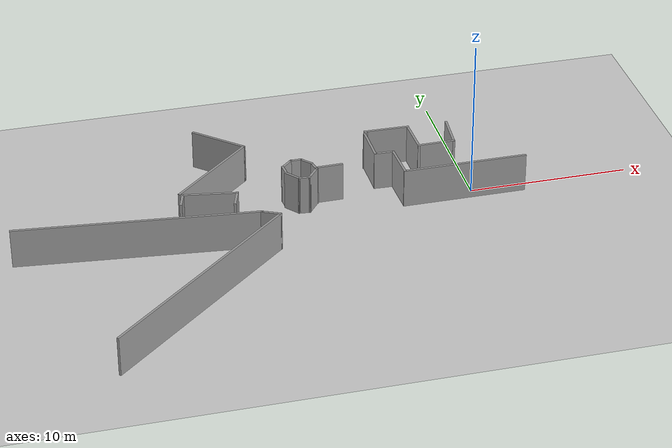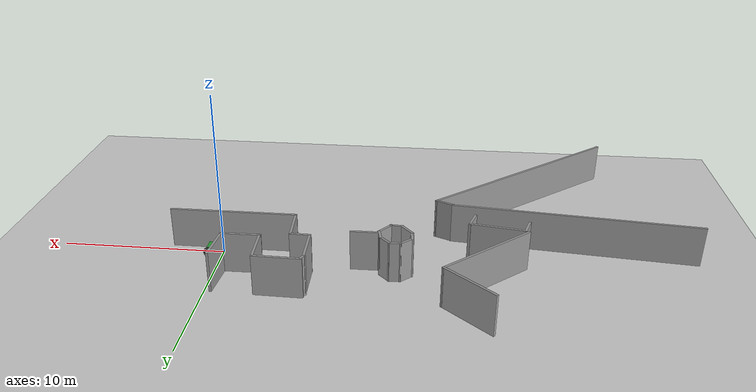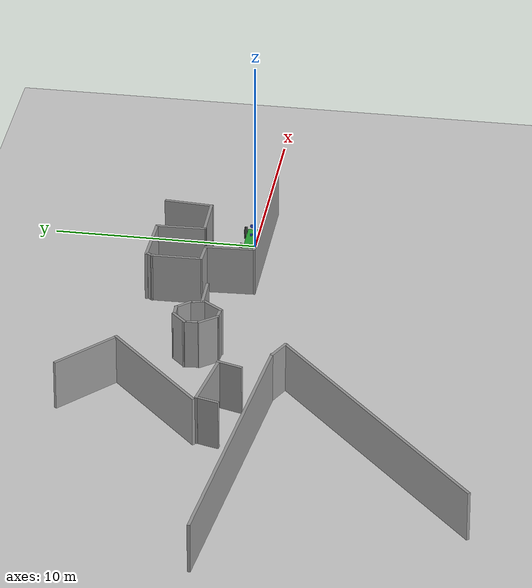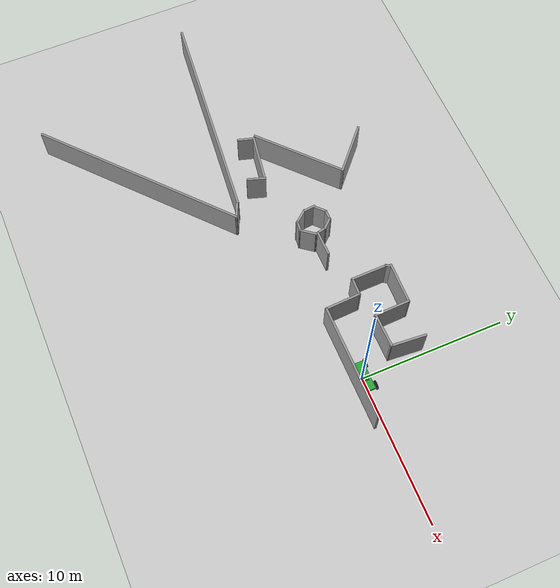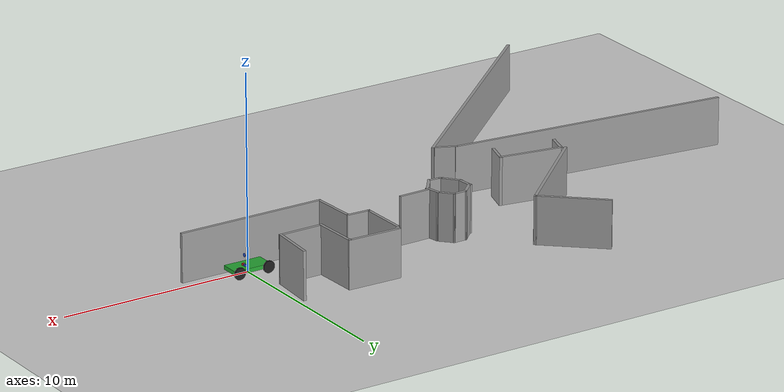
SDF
<sdf version="1.6">
 <world name="default">
  <model name="ground_plane">
   <static>1</static>
   <link name="link">
    <collision name="collision">
     <geometry><plane><normal>0 0 1</normal><size>100 100</size></plane></geometry>
     <surface><friction><ode><mu>100</mu><mu2>50</mu2></ode></friction></surface>
    </collision>
    <visual name="visual">
     <cast_shadows>0</cast_shadows>
     <geometry><plane><normal>0 0 1</normal><size>100 100</size></plane></geometry>
     <material>
      <script><uri>file://media/materials/scripts/gazebo.material</uri><name>Gazebo/Grey</name></script>
     </material>
    </visual>
   </link>
  </model>
  <model name="mall_new_reduce_size">
   <pose>-6.8092 7.5529 0 0 -0 0</pose>
   <link name="Wall_246">
    <collision name="Wall_246_Collision">
     <geometry><box><size>0.40844 0.15 2.5</size></box></geometry>
     <pose>0 0 1.25 0 -0 0</pose>
    </collision>
    <visual name="Wall_246_Visual">
     <pose>0 0 1.25 0 -0 0</pose>
     <geometry><box><size>0.40844 0.15 2.5</size></box></geometry>
     <material>
      <script><uri>file://media/materials/scripts/gazebo.material</uri><name>Gazebo/Grey</name></script>
      <ambient>1 1 1 1</ambient>
     </material>
     <meta><layer>0</layer></meta>
    </visual>
    <pose>1.19003 -3.26525 0 0 -0 -2.19847</pose>
   </link>
   <link name="Wall_247">
    <collision name="Wall_247_Collision">
     <geometry><box><size>2.53 0.15 2.5</size></box></geometry>
     <pose>0 0 1.25 0 -0 0</pose>
    </collision>
    <visual name="Wall_247_Visual">
     <pose>0 0 1.25 0 -0 0</pose>
     <geometry><box><size>2.53 0.15 2.5</size></box></geometry>
     <material>
      <script><uri>file://media/materials/scripts/gazebo.material</uri><name>Gazebo/Grey</name></script>
      <ambient>1 1 1 1</ambient>
     </material>
     <meta><layer>0</layer></meta>
    </visual>
    <pose>1.14793 -4.55973 0 0 -0 -1.55658</pose>
   </link>
   <link name="Wall_248">
    <collision name="Wall_248_Collision">
     <geometry><box><size>1.286 0.15 2.5</size></box></geometry>
     <pose>0 0 1.25 0 -0 0</pose>
    </collision>
    <visual name="Wall_248_Visual">
     <pose>0 0 1.25 0 -0 0</pose>
     <geometry><box><size>1.286 0.15 2.5</size></box></geometry>
     <material>
      <script><uri>file://media/materials/scripts/gazebo.material</uri><name>Gazebo/Grey</name></script>
      <ambient>1 1 1 1</ambient>
     </material>
     <meta><layer>0</layer></meta>
    </visual>
    <pose>1.73245 -5.78757 0 0 -0 -0.037153</pose>
   </link>
   <link name="Wall_249">
    <collision name="Wall_249_Collision">
     <geometry><box><size>2.45157 0.15 2.5</size></box></geometry>
     <pose>0 0 1.25 0 -0 0</pose>
    </collision>
    <visual name="Wall_249_Visual">
     <pose>0 0 1.25 0 -0 0</pose>
     <geometry><box><size>2.45157 0.15 2.5</size></box></geometry>
     <material>
      <script><uri>file://media/materials/scripts/gazebo.material</uri><name>Gazebo/Grey</name></script>
      <ambient>1 1 1 1</ambient>
     </material>
     <meta><layer>0</layer></meta>
    </visual>
    <pose>2.35085 -6.98766 0 0 -0 -1.52665</pose>
   </link>
   <link name="Wall_250">
    <collision name="Wall_250_Collision">
     <geometry><box><size>7.76065 0.15 2.5</size></box></geometry>
     <pose>0 0 1.25 0 -0 0</pose>
    </collision>
    <visual name="Wall_250_Visual">
     <pose>0 0 1.25 0 -0 0</pose>
     <geometry><box><size>7.76065 0.15 2.5</size></box></geometry>
     <material>
      <script><uri>file://media/materials/scripts/gazebo.material</uri><name>Gazebo/Grey</name></script>
      <ambient>1 1 1 1</ambient>
     </material>
     <meta><layer>0</layer></meta>
    </visual>
    <pose>6.20696 -8.14975 0 0 -0 0.000586</pose>
   </link>
   <link name="Wall_255">
    <collision name="Wall_255_Collision">
     <geometry><box><size>2.43165 0.15 2.5</size></box></geometry>
     <pose>0 0 1.25 0 -0 0</pose>
    </collision>
    <visual name="Wall_255_Visual">
     <pose>0 0 1.25 0 -0 0</pose>
     <geometry><box><size>2.43165 0.15 2.5</size></box></geometry>
     <material>
      <script><uri>file://media/materials/scripts/gazebo.material</uri><name>Gazebo/Grey</name></script>
      <ambient>1 1 1 1</ambient>
     </material>
     <meta><layer>0</layer></meta>
    </visual>
    <pose>6.35442 -4.32233 0 0 -0 -1.64969</pose>
   </link>
   <link name="Wall_256">
    <collision name="Wall_256_Collision">
     <geometry><box><size>2.39373 0.15 2.5</size></box></geometry>
     <pose>0 0 1.25 0 -0 0</pose>
    </collision>
    <visual name="Wall_256_Visual">
     <pose>0 0 1.25 0 -0 0</pose>
     <geometry><box><size>2.39373 0.15 2.5</size></box></geometry>
     <material>
      <script><uri>file://media/materials/scripts/gazebo.material</uri><name>Gazebo/Grey</name></script>
      <ambient>1 1 1 1</ambient>
     </material>
     <meta><layer>0</layer></meta>
    </visual>
    <pose>5.14271 -5.45702 0 0 -0 -3.13083</pose>
   </link>
   <link name="Wall_257">
    <collision name="Wall_257_Collision">
     <geometry><box><size>2.48743 0.15 2.5</size></box></geometry>
     <pose>0 0 1.25 0 -0 0</pose>
    </collision>
    <visual name="Wall_257_Visual">
     <pose>0 0 1.25 0 -0 0</pose>
     <geometry><box><size>2.48743 0.15 2.5</size></box></geometry>
     <material>
      <script><uri>file://media/materials/scripts/gazebo.material</uri><name>Gazebo/Grey</name></script>
      <ambient>1 1 1 1</ambient>
     </material>
     <meta><layer>0</layer></meta>
    </visual>
    <pose>3.98296 -4.31566 0 0 -0 1.60328</pose>
   </link>
   <link name="Wall_258">
    <collision name="Wall_258_Collision">
     <geometry><box><size>2.86843 0.15 2.5</size></box></geometry>
     <pose>0 0 1.25 0 -0 0</pose>
    </collision>
    <visual name="Wall_258_Visual">
     <pose>0 0 1.25 0 -0 0</pose>
     <geometry><box><size>2.86843 0.15 2.5</size></box></geometry>
     <material>
      <script><uri>file://media/materials/scripts/gazebo.material</uri><name>Gazebo/Grey</name></script>
      <ambient>1 1 1 1</ambient>
     </material>
     <meta><layer>0</layer></meta>
    </visual>
    <pose>2.58612 -3.10264 0 0 -0 3.11933</pose>
   </link>
   <link name="Wall_267">
    <collision name="Wall_267_Collision">
     <geometry><box><size>0.820925 0.15 2.5</size></box></geometry>
     <pose>0 0 1.25 0 -0 0</pose>
    </collision>
    <visual name="Wall_267_Visual">
     <pose>0 0 1.25 0 -0 0</pose>
     <geometry><box><size>0.820925 0.15 2.5</size></box></geometry>
     <material>
      <script><uri>file://media/materials/scripts/gazebo.material</uri><name>Gazebo/Grey</name></script>
      <ambient>1 1 1 1</ambient>
     </material>
     <meta><layer>0</layer></meta>
    </visual>
    <pose>-4.64546 -6.23474 0 0 -0 1.67128</pose>
   </link>
   <link name="Wall_268">
    <collision name="Wall_268_Collision">
     <geometry><box><size>1.02099 0.15 2.5</size></box></geometry>
     <pose>0 0 1.25 0 -0 0</pose>
    </collision>
    <visual name="Wall_268_Visual">
     <pose>0 0 1.25 0 -0 0</pose>
     <geometry><box><size>1.02099 0.15 2.5</size></box></geometry>
     <material>
      <script><uri>file://media/materials/scripts/gazebo.material</uri><name>Gazebo/Grey</name></script>
      <ambient>1 1 1 1</ambient>
     </material>
     <meta><layer>0</layer></meta>
    </visual>
    <pose>-4.34926 -5.61512 0 0 -0 0.761586</pose>
   </link>
   <link name="Wall_269">
    <collision name="Wall_269_Collision">
     <geometry><box><size>0.764839 0.15 2.5</size></box></geometry>
     <pose>0 0 1.25 0 -0 0</pose>
    </collision>
    <visual name="Wall_269_Visual">
     <pose>0 0 1.25 0 -0 0</pose>
     <geometry><box><size>0.764839 0.15 2.5</size></box></geometry>
     <material>
      <script><uri>file://media/materials/scripts/gazebo.material</uri><name>Gazebo/Grey</name></script>
      <ambient>1 1 1 1</ambient>
     </material>
     <meta><layer>0</layer></meta>
    </visual>
    <pose>-3.71208 -5.32193 0 0 -0 0.023853</pose>
   </link>
   <link name="Wall_270">
    <collision name="Wall_270_Collision">
     <geometry><box><size>0.937561 0.15 2.5</size></box></geometry>
     <pose>0 0 1.25 0 -0 0</pose>
    </collision>
    <visual name="Wall_270_Visual">
     <pose>0 0 1.25 0 -0 0</pose>
     <geometry><box><size>0.937561 0.15 2.5</size></box></geometry>
     <material>
      <script><uri>file://media/materials/scripts/gazebo.material</uri><name>Gazebo/Grey</name></script>
      <ambient>1 1 1 1</ambient>
     </material>
     <meta><layer>0</layer></meta>
    </visual>
    <pose>-3.13761 -5.61857 0 0 -0 -0.825217</pose>
   </link>
   <link name="Wall_271">
    <collision name="Wall_271_Collision">
     <geometry><box><size>0.841723 0.15 2.5</size></box></geometry>
     <pose>0 0 1.25 0 -0 0</pose>
    </collision>
    <visual name="Wall_271_Visual">
     <pose>0 0 1.25 0 -0 0</pose>
     <geometry><box><size>0.841723 0.15 2.5</size></box></geometry>
     <material>
      <script><uri>file://media/materials/scripts/gazebo.material</uri><name>Gazebo/Grey</name></script>
      <ambient>1 1 1 1</ambient>
     </material>
     <meta><layer>0</layer></meta>
    </visual>
    <pose>-2.79889 -6.26091 0 0 -0 -1.36232</pose>
   </link>
   <link name="Wall_272">
    <collision name="Wall_272_Collision">
     <geometry><box><size>1.2184 0.15 2.5</size></box></geometry>
     <pose>0 0 1.25 0 -0 0</pose>
    </collision>
    <visual name="Wall_272_Visual">
     <pose>0 0 1.25 0 -0 0</pose>
     <geometry><box><size>1.2184 0.15 2.5</size></box></geometry>
     <material>
      <script><uri>file://media/materials/scripts/gazebo.material</uri><name>Gazebo/Grey</name></script>
      <ambient>1 1 1 1</ambient>
     </material>
     <meta><layer>0</layer></meta>
    </visual>
    <pose>-3.04961 -7.02531 0 0 -0 -2.21847</pose>
   </link>
   <link name="Wall_273">
    <collision name="Wall_273_Collision">
     <geometry><box><size>0.777136 0.15 2.5</size></box></geometry>
     <pose>0 0 1.25 0 -0 0</pose>
    </collision>
    <visual name="Wall_273_Visual">
     <pose>0 0 1.25 0 -0 0</pose>
     <geometry><box><size>0.777136 0.15 2.5</size></box></geometry>
     <material>
      <script><uri>file://media/materials/scripts/gazebo.material</uri><name>Gazebo/Grey</name></script>
      <ambient>1 1 1 1</ambient>
     </material>
     <meta><layer>0</layer></meta>
    </visual>
    <pose>-3.68436 -7.41023 0 0 -0 3.05721</pose>
   </link>
   <link name="Wall_274">
    <collision name="Wall_274_Collision">
     <geometry><box><size>1.15435 0.15 2.5</size></box></geometry>
     <pose>0 0 1.25 0 -0 0</pose>
    </collision>
    <visual name="Wall_274_Visual">
     <pose>0 0 1.25 0 -0 0</pose>
     <geometry><box><size>1.15435 0.15 2.5</size></box></geometry>
     <material>
      <script><uri>file://media/materials/scripts/gazebo.material</uri><name>Gazebo/Grey</name></script>
      <ambient>1 1 1 1</ambient>
     </material>
     <meta><layer>0</layer></meta>
    </visual>
    <pose>-4.31455 -7.00602 0 0 -0 2.25587</pose>
   </link>
   <link name="Wall_280">
    <collision name="Wall_280_Collision">
     <geometry><box><size>1.75812 0.15 2.5</size></box></geometry>
     <pose>0 0 1.25 0 -0 0</pose>
    </collision>
    <visual name="Wall_280_Visual">
     <pose>0 0 1.25 0 -0 0</pose>
     <geometry><box><size>1.75812 0.15 2.5</size></box></geometry>
     <material>
      <script><uri>file://media/materials/scripts/gazebo.material</uri><name>Gazebo/Grey</name></script>
      <ambient>1 1 1 1</ambient>
     </material>
     <meta><layer>0</layer></meta>
    </visual>
    <pose>-1.93612 -6.45549 0 0 -0 0.013364</pose>
   </link>
   <link name="Wall_284">
    <collision name="Wall_284_Collision">
     <geometry><box><size>1.3189 0.15 2.5</size></box></geometry>
     <pose>0 0 1.25 0 -0 0</pose>
    </collision>
    <visual name="Wall_284_Visual">
     <pose>0 0 1.25 0 -0 0</pose>
     <geometry><box><size>1.3189 0.15 2.5</size></box></geometry>
     <material>
      <script><uri>file://media/materials/scripts/gazebo.material</uri><name>Gazebo/Grey</name></script>
      <ambient>1 1 1 1</ambient>
     </material>
     <meta><layer>0</layer></meta>
    </visual>
    <pose>-8.11493 -8.61894 0 0 -0 1.26497</pose>
   </link>
   <link name="Wall_285">
    <collision name="Wall_285_Collision">
     <geometry><box><size>3.37777 0.15 2.5</size></box></geometry>
     <pose>0 0 1.25 0 -0 0</pose>
    </collision>
    <visual name="Wall_285_Visual">
     <pose>0 0 1.25 0 -0 0</pose>
     <geometry><box><size>3.37777 0.15 2.5</size></box></geometry>
     <material>
      <script><uri>file://media/materials/scripts/gazebo.material</uri><name>Gazebo/Grey</name></script>
      <ambient>1 1 1 1</ambient>
     </material>
     <meta><layer>0</layer></meta>
    </visual>
    <pose>-9.56079 -7.81441 0 0 -0 2.97862</pose>
   </link>
   <link name="Wall_286">
    <collision name="Wall_286_Collision">
     <geometry><box><size>1.21161 0.15 2.5</size></box></geometry>
     <pose>0 0 1.25 0 -0 0</pose>
    </collision>
    <visual name="Wall_286_Visual">
     <pose>0 0 1.25 0 -0 0</pose>
     <geometry><box><size>1.21161 0.15 2.5</size></box></geometry>
     <material>
      <script><uri>file://media/materials/scripts/gazebo.material</uri><name>Gazebo/Grey</name></script>
      <ambient>1 1 1 1</ambient>
     </material>
     <meta><layer>0</layer></meta>
    </visual>
    <pose>-11.2883 -8.06181 0 0 -0 -1.85667</pose>
   </link>
   <link name="Wall_289">
    <collision name="Wall_289_Collision">
     <geometry><box><size>3.74389 0.15 2.5</size></box></geometry>
     <pose>0 0 1.25 0 -0 0</pose>
    </collision>
    <visual name="Wall_289_Visual">
     <pose>0 0 1.25 0 -0 0</pose>
     <geometry><box><size>3.74389 0.15 2.5</size></box></geometry>
     <material>
      <script><uri>file://media/materials/scripts/gazebo.material</uri><name>Gazebo/Grey</name></script>
      <ambient>1 1 1 1</ambient>
     </material>
     <meta><layer>0</layer></meta>
    </visual>
    <pose>-7.8177 -1.7822 0 0 -0 -0.730552</pose>
   </link>
   <link name="Wall_293">
    <collision name="Wall_293_Collision">
     <geometry><box><size>6.69055 0.15 2.5</size></box></geometry>
     <pose>0 0 1.25 0 -0 0</pose>
    </collision>
    <visual name="Wall_293_Visual">
     <pose>0 0 1.25 0 -0 0</pose>
     <geometry><box><size>6.69055 0.15 2.5</size></box></geometry>
     <material>
      <script><uri>file://media/materials/scripts/gazebo.material</uri><name>Gazebo/Grey</name></script>
      <ambient>1 1 1 1</ambient>
     </material>
     <meta><layer>0</layer></meta>
    </visual>
    <pose>-8.88827 -5.19299 0 0 -0 -2.39885</pose>
   </link>
   <link name="Wall_310">
    <collision name="Wall_310_Collision">
     <geometry><box><size>14.7966 0.15 2.5</size></box></geometry>
     <pose>0 0 1.25 0 -0 0</pose>
    </collision>
    <visual name="Wall_310_Visual">
     <pose>0 0 1.25 0 -0 0</pose>
     <geometry><box><size>14.7966 0.15 2.5</size></box></geometry>
     <material>
      <script><uri>file://media/materials/scripts/gazebo.material</uri><name>Gazebo/Grey</name></script>
      <ambient>1 1 1 1</ambient>
     </material>
     <meta><layer>0</layer></meta>
    </visual>
    <pose>-14.2431 -9.68361 0 0 -0 -0.103547</pose>
   </link>
   <link name="Wall_311">
    <collision name="Wall_311_Collision">
     <geometry><box><size>1.25215 0.15 2.5</size></box></geometry>
     <pose>0 0 1.25 0 -0 0</pose>
    </collision>
    <visual name="Wall_311_Visual">
     <pose>0 0 1.25 0 -0 0</pose>
     <geometry><box><size>1.25215 0.15 2.5</size></box></geometry>
     <material>
      <script><uri>file://media/materials/scripts/gazebo.material</uri><name>Gazebo/Grey</name></script>
      <ambient>1 1 1 1</ambient>
     </material>
     <meta><layer>0</layer></meta>
    </visual>
    <pose>-6.46 -10.6998 0 0 -0 -0.437998</pose>
   </link>
   <link name="Wall_312">
    <collision name="Wall_312_Collision">
     <geometry><box><size>15.0612 0.15 2.5</size></box></geometry>
     <pose>0 0 1.25 0 -0 0</pose>
    </collision>
    <visual name="Wall_312_Visual">
     <pose>0 0 1.25 0 -0 0</pose>
     <geometry><box><size>15.0612 0.15 2.5</size></box></geometry>
     <material>
      <script><uri>file://media/materials/scripts/gazebo.material</uri><name>Gazebo/Grey</name></script>
      <ambient>1 1 1 1</ambient>
     </material>
     <meta><layer>0</layer></meta>
    </visual>
    <pose>-11.548 -15.883 0 0 -0 -2.41791</pose>
   </link>
   <static>1</static>
  </model>
  <model name="car">
   <link name="chassis">
    <pose>0 0 0.3 0 -0 0</pose>
    <collision name="collision"><geometry><box><size>2 1 0.2</size></box></geometry></collision>
    <visual name="visual">
     <geometry><box><size>2 1 0.2</size></box></geometry>
     <material>
      <script><uri>file://media/materials/scripts/gazebo.material</uri><name>Gazebo/Green</name></script>
     </material>
    </visual>
    <inertial>
     <inertia><ixx>1</ixx><ixy>0</ixy><ixz>0</ixz><iyy>1</iyy><iyz>0</iyz><izz>1</izz></inertia>
     <mass>1</mass>
    </inertial>
   </link>
   <link name="front_left_wheel">
    <pose>0.8 0.6 0.3 -0 1.5707 1.5707</pose>
    <collision name="collision">
     <geometry><cylinder><radius>0.3</radius><length>0.1</length></cylinder></geometry>
    </collision>
    <visual name="visual">
     <geometry><cylinder><radius>0.3</radius><length>0.1</length></cylinder></geometry>
     <material>
      <script><uri>file://media/materials/scripts/gazebo.material</uri><name>Gazebo/Black</name></script>
     </material>
    </visual>
    <inertial>
     <inertia><ixx>1</ixx><ixy>0</ixy><ixz>0</ixz><iyy>1</iyy><iyz>0</iyz><izz>1</izz></inertia>
     <mass>1</mass>
    </inertial>
   </link>
   <link name="front_right_wheel">
    <pose>0.8 -0.6 0.3 -0 1.5707 1.5707</pose>
    <collision name="collision">
     <geometry><cylinder><radius>0.3</radius><length>0.1</length></cylinder></geometry>
    </collision>
    <visual name="visual">
     <geometry><cylinder><radius>0.3</radius><length>0.1</length></cylinder></geometry>
     <material>
      <script><uri>file://media/materials/scripts/gazebo.material</uri><name>Gazebo/Black</name></script>
     </material>
    </visual>
    <inertial>
     <inertia><ixx>1</ixx><ixy>0</ixy><ixz>0</ixz><iyy>1</iyy><iyz>0</iyz><izz>1</izz></inertia>
     <mass>1</mass>
    </inertial>
   </link>
   <link name="back_right_wheel">
    <pose>-0.8 -0.6 0.3 -0 1.5707 1.5707</pose>
    <collision name="collision">
     <geometry><cylinder><radius>0.3</radius><length>0.1</length></cylinder></geometry>
    </collision>
    <visual name="visual">
     <geometry><cylinder><radius>0.3</radius><length>0.1</length></cylinder></geometry>
     <material>
      <script><uri>file://media/materials/scripts/gazebo.material</uri><name>Gazebo/Black</name></script>
     </material>
    </visual>
    <inertial>
     <inertia><ixx>1</ixx><ixy>0</ixy><ixz>0</ixz><iyy>1</iyy><iyz>0</iyz><izz>1</izz></inertia>
     <mass>1</mass>
    </inertial>
   </link>
   <link name="back_left_wheel">
    <pose>-0.8 0.6 0.3 -0 1.5707 1.5707</pose>
    <collision name="collision">
     <geometry><cylinder><radius>0.3</radius><length>0.1</length></cylinder></geometry>
    </collision>
    <visual name="visual">
     <geometry><cylinder><radius>0.3</radius><length>0.1</length></cylinder></geometry>
     <material>
      <script><uri>file://media/materials/scripts/gazebo.material</uri><name>Gazebo/Black</name></script>
     </material>
    </visual>
    <inertial>
     <inertia><ixx>1</ixx><ixy>0</ixy><ixz>0</ixz><iyy>1</iyy><iyz>0</iyz><izz>1</izz></inertia>
     <mass>1</mass>
    </inertial>
   </link>
   <link name="gas_pedal">
    <pose>0.3 0.1 0.5 0 -0 0</pose>
    <collision name="collision"><geometry><box><size>0.1 0.1 0.1</size></box></geometry></collision>
    <visual name="visual">
     <geometry><box><size>0.1 0.1 0.1</size></box></geometry>
     <material>
      <script><uri>file://media/materials/scripts/gazebo.material</uri><name>Gazebo/Red</name></script>
     </material>
    </visual>
    <inertial>
     <inertia><ixx>1</ixx><ixy>0</ixy><ixz>0</ixz><iyy>1</iyy><iyz>0</iyz><izz>1</izz></inertia>
     <mass>1</mass>
    </inertial>
   </link>
   <link name="brake_pedal">
    <pose>0.3 0.25 0.5 0 -0 0</pose>
    <collision name="collision"><geometry><box><size>0.1 0.1 0.1</size></box></geometry></collision>
    <visual name="visual">
     <geometry><box><size>0.1 0.1 0.1</size></box></geometry>
     <material>
      <script><uri>file://media/materials/scripts/gazebo.material</uri><name>Gazebo/Blue</name></script>
     </material>
    </visual>
    <inertial>
     <inertia><ixx>1</ixx><ixy>0</ixy><ixz>0</ixz><iyy>1</iyy><iyz>0</iyz><izz>1</izz></inertia>
     <mass>1</mass>
    </inertial>
   </link>
   <link name="steering_wheel">
    <pose>0.3 0.2 1 0 1.5707 0</pose>
    <collision name="collision">
     <geometry><cylinder><radius>0.1</radius><length>0.01</length></cylinder></geometry>
    </collision>
    <visual name="visual">
     <geometry><cylinder><radius>0.1</radius><length>0.01</length></cylinder></geometry>
     <material>
      <script><uri>file://media/materials/scripts/gazebo.material</uri><name>Gazebo/Blue</name></script>
     </material>
    </visual>
    <inertial>
     <inertia><ixx>1</ixx><ixy>0</ixy><ixz>0</ixz><iyy>1</iyy><iyz>0</iyz><izz>1</izz></inertia>
     <mass>1</mass>
    </inertial>
   </link>
   <joint name="gas_joint" type="prismatic">
    <parent>chassis</parent>
    <child>gas_pedal</child>
    <axis>
     <xyz>1 0 0</xyz>
     <limit><lower>0</lower><upper>0.2</upper></limit>
     <use_parent_model_frame>1</use_parent_model_frame>
     <dynamics><spring_reference>0</spring_reference><spring_stiffness>0</spring_stiffness></dynamics>
    </axis>
   </joint>
   <joint name="brake_joint" type="prismatic">
    <parent>chassis</parent>
    <child>brake_pedal</child>
    <axis>
     <xyz>1 0 0</xyz>
     <limit><lower>0</lower><upper>0.2</upper></limit>
     <use_parent_model_frame>1</use_parent_model_frame>
     <dynamics><spring_reference>0</spring_reference><spring_stiffness>0</spring_stiffness></dynamics>
    </axis>
   </joint>
   <joint name="steering_joint" type="revolute">
    <parent>chassis</parent>
    <child>steering_wheel</child>
    <axis>
     <xyz>1 0 0</xyz>
     <limit><lower>-7.853</lower><upper>7.853</upper></limit>
     <use_parent_model_frame>1</use_parent_model_frame>
     <dynamics><spring_reference>0</spring_reference><spring_stiffness>0</spring_stiffness></dynamics>
    </axis>
   </joint>
   <joint name="front_left_joint" type="revolute2">
    <parent>chassis</parent>
    <child>front_left_wheel</child>
    <axis>
     <xyz>0 0 1</xyz>
     <limit><lower>-0.0500032</lower><upper>-0.0500032</upper></limit>
     <use_parent_model_frame>1</use_parent_model_frame>
     <dynamics><spring_reference>0</spring_reference><spring_stiffness>0</spring_stiffness></dynamics>
    </axis>
    <axis2>
     <xyz>0 1 0</xyz>
     <use_parent_model_frame>1</use_parent_model_frame>
     <dynamics><spring_reference>0</spring_reference><spring_stiffness>0</spring_stiffness></dynamics>
    </axis2>
    <physics><ode><limit><cfm>0</cfm><erp>0.9</erp></limit></ode></physics>
   </joint>
   <joint name="front_right_joint" type="revolute2">
    <parent>chassis</parent>
    <child>front_right_wheel</child>
    <axis>
     <xyz>0 0 1</xyz>
     <limit><lower>-0.0500032</lower><upper>-0.0500032</upper></limit>
     <use_parent_model_frame>1</use_parent_model_frame>
     <dynamics><spring_reference>0</spring_reference><spring_stiffness>0</spring_stiffness></dynamics>
    </axis>
    <axis2>
     <xyz>0 1 0</xyz>
     <use_parent_model_frame>1</use_parent_model_frame>
     <dynamics><spring_reference>0</spring_reference><spring_stiffness>0</spring_stiffness></dynamics>
    </axis2>
    <physics><ode><limit><cfm>0</cfm><erp>0.9</erp></limit></ode></physics>
   </joint>
   <joint name="back_right_joint" type="revolute2">
    <parent>chassis</parent>
    <child>back_right_wheel</child>
    <axis>
     <xyz>0 0 1</xyz>
     <limit><lower>0</lower><upper>0</upper></limit>
     <use_parent_model_frame>1</use_parent_model_frame>
     <dynamics><spring_reference>0</spring_reference><spring_stiffness>0</spring_stiffness></dynamics>
    </axis>
    <axis2>
     <xyz>0 1 0</xyz>
     <use_parent_model_frame>1</use_parent_model_frame>
     <dynamics><spring_reference>0</spring_reference><spring_stiffness>0</spring_stiffness></dynamics>
    </axis2>
    <physics><ode><limit><cfm>0</cfm><erp>0.9</erp></limit></ode></physics>
   </joint>
   <joint name="back_left_joint" type="revolute2">
    <parent>chassis</parent>
    <child>back_left_wheel</child>
    <axis>
     <xyz>0 0 1</xyz>
     <limit><lower>0</lower><upper>0</upper></limit>
     <use_parent_model_frame>1</use_parent_model_frame>
     <dynamics><spring_reference>0</spring_reference><spring_stiffness>0</spring_stiffness></dynamics>
    </axis>
    <axis2>
     <xyz>0 1 0</xyz>
     <use_parent_model_frame>1</use_parent_model_frame>
     <dynamics><spring_reference>0</spring_reference><spring_stiffness>0</spring_stiffness></dynamics>
    </axis2>
    <physics><ode><limit><cfm>0</cfm><erp>0.9</erp></limit></ode></physics>
   </joint>
   <plugin name="vehicle" filename="libVehiclePlugin.so">
    <front_left>front_left_joint</front_left>
    <front_right>front_right_joint</front_right>
    <back_left>back_left_joint</back_left>
    <back_right>back_right_joint</back_right>
    <gas>gas_joint</gas>
    <brake>brake_joint</brake>
    <steering>steering_joint</steering>
    <front_power>10</front_power>
    <rear_power>10</rear_power>
    <tire_angle_range>0.5</tire_angle_range>
    <max_speed>10</max_speed>
    <aero_load>0.1</aero_load>
   </plugin>
  </model>
 </world>
</sdf>
